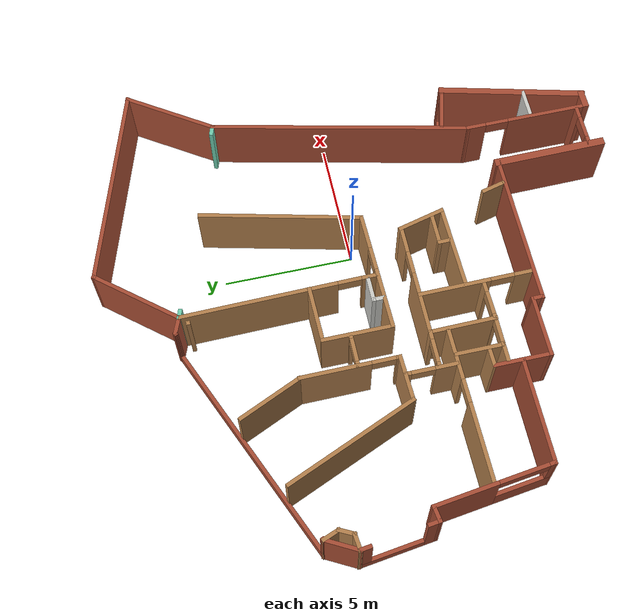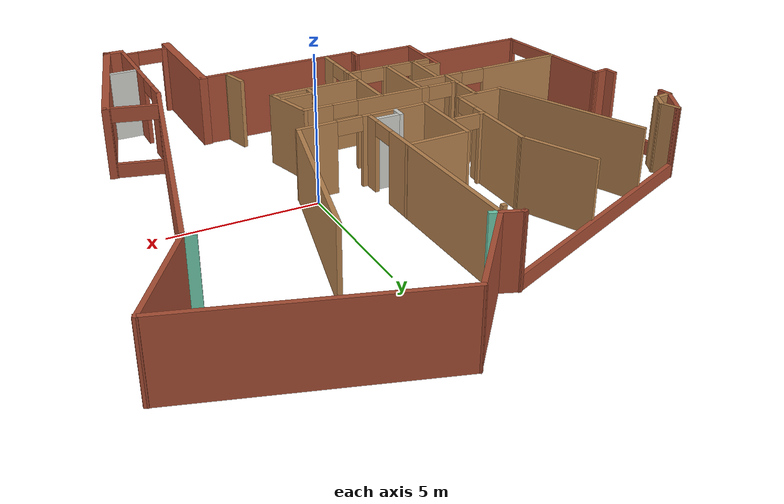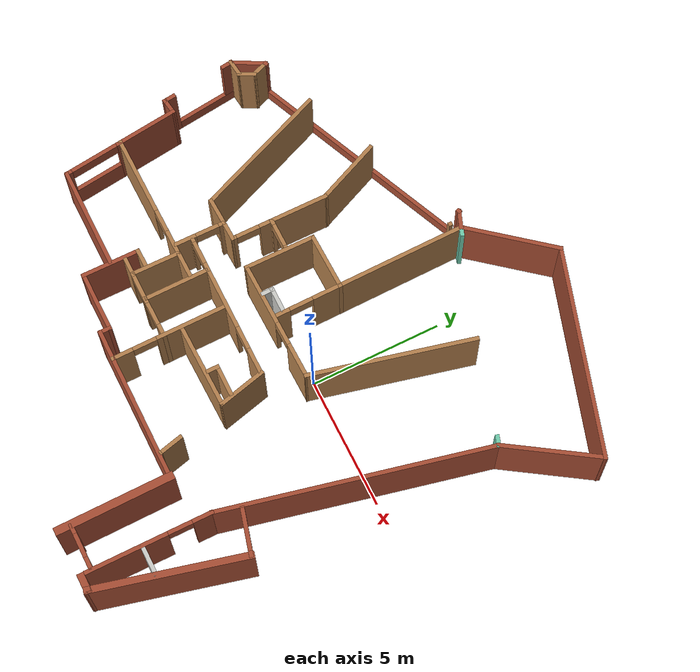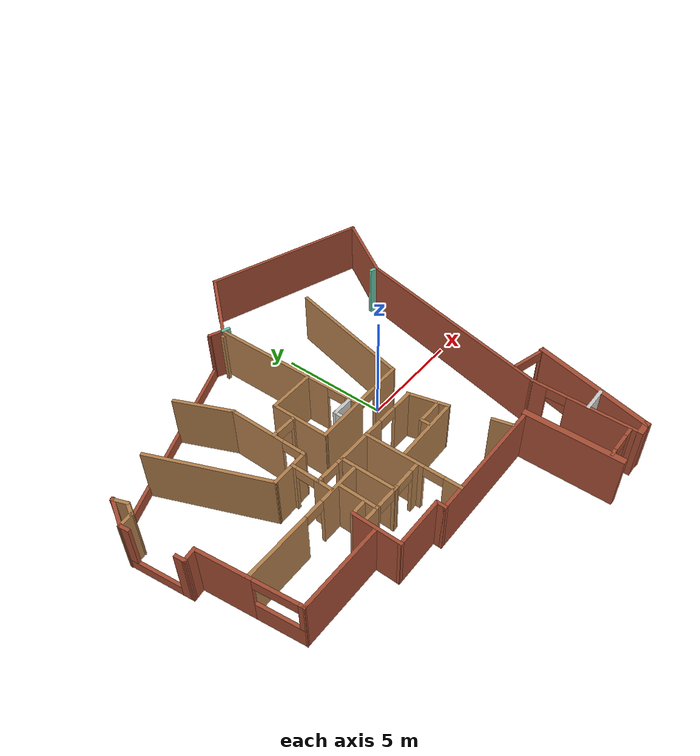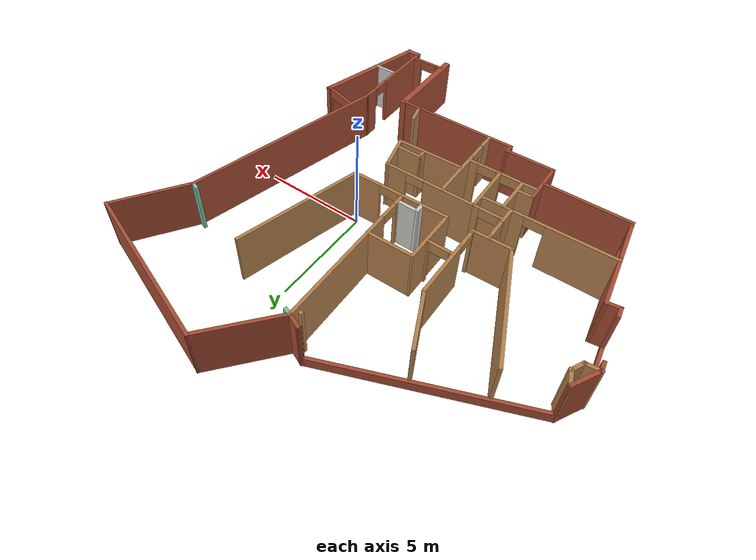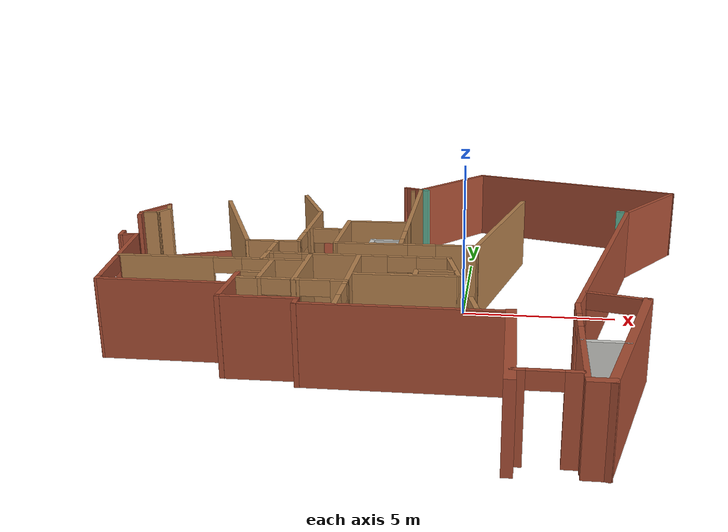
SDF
<sdf version="1.6">
 <model name="Leedon">
  <pose>-2.12155 -0.286424 0 0 -0 0</pose>
  <link name="Wall_10">
   <collision name="Wall_10_Collision">
    <geometry><box><size>4.40644 0.3 2.5</size></box></geometry>
    <pose>0 0 1.25 0 -0 0</pose>
   </collision>
   <visual name="Wall_10_Visual">
    <pose>0 0 1.25 0 -0 0</pose>
    <geometry><box><size>4.40644 0.3 2.5</size></box></geometry>
    <material>
     <script><uri>file://media/materials/scripts/gazebo.material</uri><name>Gazebo/Bricks</name></script>
     <ambient>1 1 1 1</ambient>
    </material>
    <meta><layer>0</layer></meta>
   </visual>
   <pose>3.76655 -7.92646 0 0 -0 1.58054</pose>
  </link>
  <link name="Wall_101">
   <pose>5.51872 -7.43744 0 0 -0 -1.57072</pose>
   <visual name="Wall_101_Visual_0">
    <pose>-1.97999 0 1.25 0 -0 0</pose>
    <geometry><box><size>0.790018 0.15 2.5</size></box></geometry>
    <material>
     <script><uri>file://media/materials/scripts/gazebo.material</uri><name>Gazebo/Bricks</name></script>
     <ambient>1 1 1 1</ambient>
    </material>
    <meta><layer>0</layer></meta>
   </visual>
   <collision name="Wall_101_Collision_0">
    <geometry><box><size>0.790018 0.15 2.5</size></box></geometry>
    <pose>-1.97999 0 1.25 0 -0 0</pose>
   </collision>
   <visual name="Wall_101_Visual_1">
    <pose>0.845009 0 1.25 0 -0 0</pose>
    <geometry><box><size>3.05998 0.15 2.5</size></box></geometry>
    <material>
     <script><uri>file://media/materials/scripts/gazebo.material</uri><name>Gazebo/Bricks</name></script>
     <ambient>1 1 1 1</ambient>
    </material>
    <meta><layer>0</layer></meta>
   </visual>
   <collision name="Wall_101_Collision_1">
    <geometry><box><size>3.05998 0.15 2.5</size></box></geometry>
    <pose>0.845009 0 1.25 0 -0 0</pose>
   </collision>
   <visual name="Wall_101_Visual_2">
    <pose>-1.13498 0 2.25 0 -0 0</pose>
    <geometry><box><size>0.9 0.15 0.5</size></box></geometry>
    <material>
     <script><uri>file://media/materials/scripts/gazebo.material</uri><name>Gazebo/Bricks</name></script>
     <ambient>1 1 1 1</ambient>
    </material>
    <meta><layer>0</layer></meta>
   </visual>
   <collision name="Wall_101_Collision_2">
    <geometry><box><size>0.9 0.15 0.5</size></box></geometry>
    <pose>-1.13498 0 2.25 0 -0 0</pose>
   </collision>
  </link>
  <link name="Wall_103">
   <pose>-5.61845 -2.19508 0 0 -0 0.010769</pose>
   <visual name="Wall_103_Visual_0">
    <pose>-1.43968 0 1.25 0 -0 0</pose>
    <geometry><box><size>3.12174 0.15 2.5</size></box></geometry>
    <material>
     <script><uri>file://media/materials/scripts/gazebo.material</uri><name>Gazebo/Wood</name></script>
     <ambient>1 1 1 1</ambient>
    </material>
    <meta><layer>0</layer></meta>
   </visual>
   <collision name="Wall_103_Collision_0">
    <geometry><box><size>3.12174 0.15 2.5</size></box></geometry>
    <pose>-1.43968 0 1.25 0 -0 0</pose>
   </collision>
   <visual name="Wall_103_Visual_1">
    <pose>2.01087 0 1.25 0 -0 0</pose>
    <geometry><box><size>1.97935 0.15 2.5</size></box></geometry>
    <material>
     <script><uri>file://media/materials/scripts/gazebo.material</uri><name>Gazebo/Wood</name></script>
     <ambient>1 1 1 1</ambient>
    </material>
    <meta><layer>0</layer></meta>
   </visual>
   <collision name="Wall_103_Collision_1">
    <geometry><box><size>1.97935 0.15 2.5</size></box></geometry>
    <pose>2.01087 0 1.25 0 -0 0</pose>
   </collision>
   <visual name="Wall_103_Visual_2">
    <pose>0.571194 0 2.25 0 -0 0</pose>
    <geometry><box><size>0.9 0.15 0.5</size></box></geometry>
    <material>
     <script><uri>file://media/materials/scripts/gazebo.material</uri><name>Gazebo/Wood</name></script>
     <ambient>1 1 1 1</ambient>
    </material>
    <meta><layer>0</layer></meta>
   </visual>
   <collision name="Wall_103_Collision_2">
    <geometry><box><size>0.9 0.15 0.5</size></box></geometry>
    <pose>0.571194 0 2.25 0 -0 0</pose>
   </collision>
  </link>
  <link name="Wall_105">
   <collision name="Wall_105_Collision">
    <geometry><box><size>0.75 0.15 2.5</size></box></geometry>
    <pose>0 0 1.25 0 -0 0</pose>
   </collision>
   <visual name="Wall_105_Visual">
    <pose>0 0 1.25 0 -0 0</pose>
    <geometry><box><size>0.75 0.15 2.5</size></box></geometry>
    <material>
     <script><uri>file://media/materials/scripts/gazebo.material</uri><name>Gazebo/Wood</name></script>
     <ambient>1 1 1 1</ambient>
    </material>
    <meta><layer>0</layer></meta>
   </visual>
   <pose>-3.92614 -3.94824 0 0 -0 3.14159</pose>
  </link>
  <link name="Wall_108">
   <pose>-1.79783 -3.93862 0 0 -0 0.01792</pose>
   <visual name="Wall_108_Visual_0">
    <pose>-0.71544 0 1.25 0 -0 0</pose>
    <geometry><box><size>0.26782 0.15 2.5</size></box></geometry>
    <material>
     <script><uri>file://media/materials/scripts/gazebo.material</uri><name>Gazebo/Wood</name></script>
     <ambient>1 1 1 1</ambient>
    </material>
    <meta><layer>0</layer></meta>
   </visual>
   <collision name="Wall_108_Collision_0">
    <geometry><box><size>0.26782 0.15 2.5</size></box></geometry>
    <pose>-0.71544 0 1.25 0 -0 0</pose>
   </collision>
   <visual name="Wall_108_Visual_1">
    <pose>0.58391 0 1.25 0 -0 0</pose>
    <geometry><box><size>0.53088 0.15 2.5</size></box></geometry>
    <material>
     <script><uri>file://media/materials/scripts/gazebo.material</uri><name>Gazebo/Wood</name></script>
     <ambient>1 1 1 1</ambient>
    </material>
    <meta><layer>0</layer></meta>
   </visual>
   <collision name="Wall_108_Collision_1">
    <geometry><box><size>0.53088 0.15 2.5</size></box></geometry>
    <pose>0.58391 0 1.25 0 -0 0</pose>
   </collision>
   <visual name="Wall_108_Visual_2">
    <pose>-0.13153 0 2.25 0 -0 0</pose>
    <geometry><box><size>0.9 0.15 0.5</size></box></geometry>
    <material>
     <script><uri>file://media/materials/scripts/gazebo.material</uri><name>Gazebo/Wood</name></script>
     <ambient>1 1 1 1</ambient>
    </material>
    <meta><layer>0</layer></meta>
   </visual>
   <collision name="Wall_108_Collision_2">
    <geometry><box><size>0.9 0.15 0.5</size></box></geometry>
    <pose>-0.13153 0 2.25 0 -0 0</pose>
   </collision>
  </link>
  <link name="Wall_110">
   <pose>-1.02896 -3.68809 0 0 -0 -1.56252</pose>
   <visual name="Wall_110_Visual_0">
    <pose>-0.863691 0 1.25 0 -0 0</pose>
    <geometry><box><size>2.77277 0.15 2.5</size></box></geometry>
    <material>
     <script><uri>file://media/materials/scripts/gazebo.material</uri><name>Gazebo/Wood</name></script>
     <ambient>1 1 1 1</ambient>
    </material>
    <meta><layer>0</layer></meta>
   </visual>
   <collision name="Wall_110_Collision_0">
    <geometry><box><size>2.77277 0.15 2.5</size></box></geometry>
    <pose>-0.863691 0 1.25 0 -0 0</pose>
   </collision>
   <visual name="Wall_110_Visual_1">
    <pose>1.83638 0 1.25 0 -0 0</pose>
    <geometry><box><size>0.827382 0.15 2.5</size></box></geometry>
    <material>
     <script><uri>file://media/materials/scripts/gazebo.material</uri><name>Gazebo/Wood</name></script>
     <ambient>1 1 1 1</ambient>
    </material>
    <meta><layer>0</layer></meta>
   </visual>
   <collision name="Wall_110_Collision_1">
    <geometry><box><size>0.827382 0.15 2.5</size></box></geometry>
    <pose>1.83638 0 1.25 0 -0 0</pose>
   </collision>
   <visual name="Wall_110_Visual_2">
    <pose>0.972693 0 2.25 0 -0 0</pose>
    <geometry><box><size>0.9 0.15 0.5</size></box></geometry>
    <material>
     <script><uri>file://media/materials/scripts/gazebo.material</uri><name>Gazebo/Wood</name></script>
     <ambient>1 1 1 1</ambient>
    </material>
    <meta><layer>0</layer></meta>
   </visual>
   <collision name="Wall_110_Collision_2">
    <geometry><box><size>0.9 0.15 0.5</size></box></geometry>
    <pose>0.972693 0 2.25 0 -0 0</pose>
   </collision>
  </link>
  <link name="Wall_113">
   <pose>-0.416989 -1.50816 0 0 -0 -0.000656</pose>
   <visual name="Wall_113_Visual_0">
    <pose>-0.986339 0 1.25 0 -0 0</pose>
    <geometry><box><size>2.50599 0.15 2.5</size></box></geometry>
    <material>
     <script><uri>file://media/materials/scripts/gazebo.material</uri><name>Gazebo/Wood</name></script>
     <ambient>1 1 1 1</ambient>
    </material>
    <meta><layer>0</layer></meta>
   </visual>
   <collision name="Wall_113_Collision_0">
    <geometry><box><size>2.50599 0.15 2.5</size></box></geometry>
    <pose>-0.986339 0 1.25 0 -0 0</pose>
   </collision>
   <visual name="Wall_113_Visual_1">
    <pose>1.703 0 1.25 0 -0 0</pose>
    <geometry><box><size>1.07268 0.15 2.5</size></box></geometry>
    <material>
     <script><uri>file://media/materials/scripts/gazebo.material</uri><name>Gazebo/Wood</name></script>
     <ambient>1 1 1 1</ambient>
    </material>
    <meta><layer>0</layer></meta>
   </visual>
   <collision name="Wall_113_Collision_1">
    <geometry><box><size>1.07268 0.15 2.5</size></box></geometry>
    <pose>1.703 0 1.25 0 -0 0</pose>
   </collision>
   <visual name="Wall_113_Visual_2">
    <pose>0.716658 0 2.25 0 -0 0</pose>
    <geometry><box><size>0.9 0.15 0.5</size></box></geometry>
    <material>
     <script><uri>file://media/materials/scripts/gazebo.material</uri><name>Gazebo/Wood</name></script>
     <ambient>1 1 1 1</ambient>
    </material>
    <meta><layer>0</layer></meta>
   </visual>
   <collision name="Wall_113_Collision_2">
    <geometry><box><size>0.9 0.15 0.5</size></box></geometry>
    <pose>0.716658 0 2.25 0 -0 0</pose>
   </collision>
  </link>
  <link name="Wall_114">
   <pose>2.29634 -3.62928 0 0 -0 -1.32455</pose>
   <visual name="Wall_114_Visual_0">
    <pose>-1.33328 0 1.25 0 -0 0</pose>
    <geometry><box><size>1.89923 0.15 2.5</size></box></geometry>
    <material>
     <script><uri>file://media/materials/scripts/gazebo.material</uri><name>Gazebo/Wood</name></script>
     <ambient>1 1 1 1</ambient>
    </material>
    <meta><layer>0</layer></meta>
   </visual>
   <collision name="Wall_114_Collision_0">
    <geometry><box><size>1.89923 0.15 2.5</size></box></geometry>
    <pose>-1.33328 0 1.25 0 -0 0</pose>
   </collision>
   <visual name="Wall_114_Visual_1">
    <pose>2.24411 0 1.25 0 -0 0</pose>
    <geometry><box><size>0.07756 0.15 2.5</size></box></geometry>
    <material>
     <script><uri>file://media/materials/scripts/gazebo.material</uri><name>Gazebo/Wood</name></script>
     <ambient>1 1 1 1</ambient>
    </material>
    <meta><layer>0</layer></meta>
   </visual>
   <collision name="Wall_114_Collision_1">
    <geometry><box><size>0.07756 0.15 2.5</size></box></geometry>
    <pose>2.24411 0 1.25 0 -0 0</pose>
   </collision>
   <visual name="Wall_114_Visual_2">
    <pose>1.75967 0 1.25 0 -0 0</pose>
    <geometry><box><size>0.891326 0.15 2.5</size></box></geometry>
    <material>
     <script><uri>file://media/materials/scripts/gazebo.material</uri><name>Gazebo/Wood</name></script>
     <ambient>1 1 1 1</ambient>
    </material>
    <meta><layer>0</layer></meta>
   </visual>
   <collision name="Wall_114_Collision_2">
    <geometry><box><size>0.891326 0.15 2.5</size></box></geometry>
    <pose>1.75967 0 1.25 0 -0 0</pose>
   </collision>
  </link>
  <link name="Wall_116">
   <pose>-3.28531 1.62386 0 0 -0 -1.56733</pose>
   <visual name="Wall_116_Visual_0">
    <pose>-0.558774 0 1.25 0 -0 0</pose>
    <geometry><box><size>2.7069 0.15 2.5</size></box></geometry>
    <material>
     <script><uri>file://media/materials/scripts/gazebo.material</uri><name>Gazebo/Wood</name></script>
     <ambient>1 1 1 1</ambient>
    </material>
    <meta><layer>0</layer></meta>
   </visual>
   <collision name="Wall_116_Collision_0">
    <geometry><box><size>2.7069 0.15 2.5</size></box></geometry>
    <pose>-0.558774 0 1.25 0 -0 0</pose>
   </collision>
   <visual name="Wall_116_Visual_1">
    <pose>1.80345 0 1.25 0 -0 0</pose>
    <geometry><box><size>0.217549 0.15 2.5</size></box></geometry>
    <material>
     <script><uri>file://media/materials/scripts/gazebo.material</uri><name>Gazebo/Wood</name></script>
     <ambient>1 1 1 1</ambient>
    </material>
    <meta><layer>0</layer></meta>
   </visual>
   <collision name="Wall_116_Collision_1">
    <geometry><box><size>0.217549 0.15 2.5</size></box></geometry>
    <pose>1.80345 0 1.25 0 -0 0</pose>
   </collision>
   <visual name="Wall_116_Visual_2">
    <pose>1.24467 0 2.25 0 -0 0</pose>
    <geometry><box><size>0.9 0.15 0.5</size></box></geometry>
    <material>
     <script><uri>file://media/materials/scripts/gazebo.material</uri><name>Gazebo/Wood</name></script>
     <ambient>1 1 1 1</ambient>
    </material>
    <meta><layer>0</layer></meta>
   </visual>
   <collision name="Wall_116_Collision_2">
    <geometry><box><size>0.9 0.15 0.5</size></box></geometry>
    <pose>1.24467 0 2.25 0 -0 0</pose>
   </collision>
  </link>
  <link name="Wall_118">
   <pose>-2.71499 1.32662 0 0 -0 0</pose>
   <visual name="Wall_118_Visual_0">
    <pose>-0.507823 0 1.25 0 -0 0</pose>
    <geometry><box><size>0.234354 0.15 2.5</size></box></geometry>
    <material>
     <script><uri>file://media/materials/scripts/gazebo.material</uri><name>Gazebo/Wood</name></script>
     <ambient>1 1 1 1</ambient>
    </material>
    <meta><layer>0</layer></meta>
   </visual>
   <collision name="Wall_118_Collision_0">
    <geometry><box><size>0.234354 0.15 2.5</size></box></geometry>
    <pose>-0.507823 0 1.25 0 -0 0</pose>
   </collision>
   <visual name="Wall_118_Visual_1">
    <pose>0.567177 0 1.25 0 -0 0</pose>
    <geometry><box><size>0.115646 0.15 2.5</size></box></geometry>
    <material>
     <script><uri>file://media/materials/scripts/gazebo.material</uri><name>Gazebo/Wood</name></script>
     <ambient>1 1 1 1</ambient>
    </material>
    <meta><layer>0</layer></meta>
   </visual>
   <collision name="Wall_118_Collision_1">
    <geometry><box><size>0.115646 0.15 2.5</size></box></geometry>
    <pose>0.567177 0 1.25 0 -0 0</pose>
   </collision>
   <visual name="Wall_118_Visual_2">
    <pose>0.059354 0 2.25 0 -0 0</pose>
    <geometry><box><size>0.9 0.15 0.5</size></box></geometry>
    <material>
     <script><uri>file://media/materials/scripts/gazebo.material</uri><name>Gazebo/Wood</name></script>
     <ambient>1 1 1 1</ambient>
    </material>
    <meta><layer>0</layer></meta>
   </visual>
   <collision name="Wall_118_Collision_2">
    <geometry><box><size>0.9 0.15 0.5</size></box></geometry>
    <pose>0.059354 0 2.25 0 -0 0</pose>
   </collision>
  </link>
  <link name="Wall_12">
   <collision name="Wall_12_Collision">
    <geometry><box><size>5.77973 0.25 2.5</size></box></geometry>
    <pose>0 0 1.25 0 -0 0</pose>
   </collision>
   <visual name="Wall_12_Visual">
    <pose>0 0 1.25 0 -0 0</pose>
    <geometry><box><size>5.77973 0.25 2.5</size></box></geometry>
    <material>
     <script><uri>file://media/materials/scripts/gazebo.material</uri><name>Gazebo/Bricks</name></script>
     <ambient>1 1 1 1</ambient>
    </material>
    <meta><layer>0</layer></meta>
   </visual>
   <pose>6.76221 -7.26643 0 0 -0 1.32218</pose>
  </link>
  <link name="Wall_120">
   <pose>-3.97205 -1.19522 0 0 -0 1.5708</pose>
   <visual name="Wall_120_Visual_0">
    <pose>-0.568925 0 1.25 0 -0 0</pose>
    <geometry><box><size>0.86215 0.15 2.5</size></box></geometry>
    <material>
     <script><uri>file://media/materials/scripts/gazebo.material</uri><name>Gazebo/Wood</name></script>
     <ambient>1 1 1 1</ambient>
    </material>
    <meta><layer>0</layer></meta>
   </visual>
   <collision name="Wall_120_Collision_0">
    <geometry><box><size>0.86215 0.15 2.5</size></box></geometry>
    <pose>-0.568925 0 1.25 0 -0 0</pose>
   </collision>
   <visual name="Wall_120_Visual_1">
    <pose>0.875126 0 1.25 0 -0 0</pose>
    <geometry><box><size>0.249748 0.15 2.5</size></box></geometry>
    <material>
     <script><uri>file://media/materials/scripts/gazebo.material</uri><name>Gazebo/Wood</name></script>
     <ambient>1 1 1 1</ambient>
    </material>
    <meta><layer>0</layer></meta>
   </visual>
   <collision name="Wall_120_Collision_1">
    <geometry><box><size>0.249748 0.15 2.5</size></box></geometry>
    <pose>0.875126 0 1.25 0 -0 0</pose>
   </collision>
   <visual name="Wall_120_Visual_2">
    <pose>0.306201 0 2.25 0 -0 0</pose>
    <geometry><box><size>0.888102 0.15 0.5</size></box></geometry>
    <material>
     <script><uri>file://media/materials/scripts/gazebo.material</uri><name>Gazebo/Wood</name></script>
     <ambient>1 1 1 1</ambient>
    </material>
    <meta><layer>0</layer></meta>
   </visual>
   <collision name="Wall_120_Collision_2">
    <geometry><box><size>0.888102 0.15 0.5</size></box></geometry>
    <pose>0.306201 0 2.25 0 -0 0</pose>
   </collision>
  </link>
  <link name="Wall_124">
   <pose>-4.87645 5.67992 0 0 -0 -2.74324</pose>
   <visual name="Wall_124_Visual_0">
    <pose>-4.61267 0 1.25 0 -0 0</pose>
    <geometry><box><size>0.177135 0.15 2.5</size></box></geometry>
    <material>
     <script><uri>file://media/materials/scripts/gazebo.material</uri><name>Gazebo/Bricks</name></script>
     <ambient>1 1 1 1</ambient>
    </material>
    <meta><layer>0</layer></meta>
   </visual>
   <collision name="Wall_124_Collision_0">
    <geometry><box><size>0.177135 0.15 2.5</size></box></geometry>
    <pose>-4.61267 0 1.25 0 -0 0</pose>
   </collision>
   <visual name="Wall_124_Visual_1">
    <pose>0.088567 0 0.25 0 -0 0</pose>
    <geometry><box><size>9.22535 0.15 0.5</size></box></geometry>
    <material>
     <script><uri>file://media/materials/scripts/gazebo.material</uri><name>Gazebo/Bricks</name></script>
     <ambient>1 1 1 1</ambient>
    </material>
    <meta><layer>0</layer></meta>
   </visual>
   <collision name="Wall_124_Collision_1">
    <geometry><box><size>9.22535 0.15 0.5</size></box></geometry>
    <pose>0.088567 0 0.25 0 -0 0</pose>
   </collision>
   <visual name="Wall_124_Visual_2">
    <pose>4.61257 0 1.5 0 -0 0</pose>
    <geometry><box><size>0.177346 0.15 2</size></box></geometry>
    <material>
     <script><uri>file://media/materials/scripts/gazebo.material</uri><name>Gazebo/Bricks</name></script>
     <ambient>1 1 1 1</ambient>
    </material>
    <meta><layer>0</layer></meta>
   </visual>
   <collision name="Wall_124_Collision_2">
    <geometry><box><size>0.177346 0.15 2</size></box></geometry>
    <pose>4.61257 0 1.5 0 -0 0</pose>
   </collision>
  </link>
  <link name="Wall_126">
   <pose>-9.56364 1.34092 0 0 -0 1.70191</pose>
   <visual name="Wall_126_Visual_0">
    <pose>-1.24658 0 1.25 0 -0 0</pose>
    <geometry><box><size>0.52041 0.15 2.5</size></box></geometry>
    <material>
     <script><uri>file://media/materials/scripts/gazebo.material</uri><name>Gazebo/Bricks</name></script>
     <ambient>1 1 1 1</ambient>
    </material>
    <meta><layer>0</layer></meta>
   </visual>
   <collision name="Wall_126_Collision_0">
    <geometry><box><size>0.52041 0.15 2.5</size></box></geometry>
    <pose>-1.24658 0 1.25 0 -0 0</pose>
   </collision>
   <visual name="Wall_126_Visual_1">
    <pose>0.260205 0 0.25 0 -0 0</pose>
    <geometry><box><size>2.49317 0.15 0.5</size></box></geometry>
    <material>
     <script><uri>file://media/materials/scripts/gazebo.material</uri><name>Gazebo/Bricks</name></script>
     <ambient>1 1 1 1</ambient>
    </material>
    <meta><layer>0</layer></meta>
   </visual>
   <collision name="Wall_126_Collision_1">
    <geometry><box><size>2.49317 0.15 0.5</size></box></geometry>
    <pose>0.260205 0 0.25 0 -0 0</pose>
   </collision>
   <visual name="Wall_126_Visual_2">
    <pose>1.26021 0 1.5 0 -0 0</pose>
    <geometry><box><size>0.493169 0.15 2</size></box></geometry>
    <material>
     <script><uri>file://media/materials/scripts/gazebo.material</uri><name>Gazebo/Bricks</name></script>
     <ambient>1 1 1 1</ambient>
    </material>
    <meta><layer>0</layer></meta>
   </visual>
   <collision name="Wall_126_Collision_2">
    <geometry><box><size>0.493169 0.15 2</size></box></geometry>
    <pose>1.26021 0 1.5 0 -0 0</pose>
   </collision>
  </link>
  <link name="Wall_128">
   <collision name="Wall_128_Collision">
    <geometry><box><size>1.42992 0.15 2.5</size></box></geometry>
    <pose>0 0 1.25 0 -0 0</pose>
   </collision>
   <visual name="Wall_128_Visual">
    <pose>0 0 1.25 0 -0 0</pose>
    <geometry><box><size>1.42992 0.15 2.5</size></box></geometry>
    <material>
     <script><uri>file://media/materials/scripts/gazebo.material</uri><name>Gazebo/Bricks</name></script>
     <ambient>1 1 1 1</ambient>
    </material>
    <meta><layer>0</layer></meta>
   </visual>
   <pose>-9.44564 3.32292 0 0 -0 1.07368</pose>
  </link>
  <link name="Wall_130">
   <collision name="Wall_130_Collision">
    <geometry><box><size>0.75 0.15 2.5</size></box></geometry>
    <pose>0 0 1.25 0 -0 0</pose>
   </collision>
   <visual name="Wall_130_Visual">
    <pose>0 0 1.25 0 -0 0</pose>
    <geometry><box><size>0.75 0.15 2.5</size></box></geometry>
    <material>
     <script><uri>file://media/materials/scripts/gazebo.material</uri><name>Gazebo/Wood</name></script>
     <ambient>1 1 1 1</ambient>
    </material>
    <meta><layer>0</layer></meta>
   </visual>
   <pose>-9.03295 3.60542 0 0 -0 -1.20422</pose>
  </link>
  <link name="Wall_131">
   <collision name="Wall_131_Collision">
    <geometry><box><size>0.702015 0.15 2.5</size></box></geometry>
    <pose>0 0 1.25 0 -0 0</pose>
   </collision>
   <visual name="Wall_131_Visual">
    <pose>0 0 1.25 0 -0 0</pose>
    <geometry><box><size>0.702015 0.15 2.5</size></box></geometry>
    <material>
     <script><uri>file://media/materials/scripts/gazebo.material</uri><name>Gazebo/Wood</name></script>
     <ambient>1 1 1 1</ambient>
    </material>
    <meta><layer>0</layer></meta>
   </visual>
   <pose>-9.05028 3.07897 0 0 -0 -2.03965</pose>
  </link>
  <link name="Wall_132">
   <collision name="Wall_132_Collision">
    <geometry><box><size>0.730211 0.15 2.5</size></box></geometry>
    <pose>0 0 1.25 0 -0 0</pose>
   </collision>
   <visual name="Wall_132_Visual">
    <pose>0 0 1.25 0 -0 0</pose>
    <geometry><box><size>0.730211 0.15 2.5</size></box></geometry>
    <material>
     <script><uri>file://media/materials/scripts/gazebo.material</uri><name>Gazebo/Wood</name></script>
     <ambient>1 1 1 1</ambient>
    </material>
    <meta><layer>0</layer></meta>
   </visual>
   <pose>-9.47007 2.80002 0 0 -0 -3.02916</pose>
  </link>
  <link name="Wall_134">
   <pose>-8.55193 -2.23582 0 0 -0 -1.43936</pose>
   <visual name="Wall_134_Visual_0">
    <pose>-1.0795 0 1.25 0 -0 0</pose>
    <geometry><box><size>2.50082 0.15 2.5</size></box></geometry>
    <material>
     <script><uri>file://media/materials/scripts/gazebo.material</uri><name>Gazebo/Bricks</name></script>
     <ambient>1 1 1 1</ambient>
    </material>
    <meta><layer>0</layer></meta>
   </visual>
   <collision name="Wall_134_Collision_0">
    <geometry><box><size>2.50082 0.15 2.5</size></box></geometry>
    <pose>-1.0795 0 1.25 0 -0 0</pose>
   </collision>
   <visual name="Wall_134_Visual_1">
    <pose>1.25041 0 0.5 0 -0 0</pose>
    <geometry><box><size>2.15901 0.15 1</size></box></geometry>
    <material>
     <script><uri>file://media/materials/scripts/gazebo.material</uri><name>Gazebo/Bricks</name></script>
     <ambient>1 1 1 1</ambient>
    </material>
    <meta><layer>0</layer></meta>
   </visual>
   <collision name="Wall_134_Collision_1">
    <geometry><box><size>2.15901 0.15 1</size></box></geometry>
    <pose>1.25041 0 0.5 0 -0 0</pose>
   </collision>
   <visual name="Wall_134_Visual_2">
    <pose>2.18991 0 1.75 0 -0 0</pose>
    <geometry><box><size>0.280007 0.15 1.5</size></box></geometry>
    <material>
     <script><uri>file://media/materials/scripts/gazebo.material</uri><name>Gazebo/Bricks</name></script>
     <ambient>1 1 1 1</ambient>
    </material>
    <meta><layer>0</layer></meta>
   </visual>
   <collision name="Wall_134_Collision_2">
    <geometry><box><size>0.280007 0.15 1.5</size></box></geometry>
    <pose>2.18991 0 1.75 0 -0 0</pose>
   </collision>
   <visual name="Wall_134_Visual_3">
    <pose>1.11041 0 2.25 0 -0 0</pose>
    <geometry><box><size>1.879 0.15 0.5</size></box></geometry>
    <material>
     <script><uri>file://media/materials/scripts/gazebo.material</uri><name>Gazebo/Bricks</name></script>
     <ambient>1 1 1 1</ambient>
    </material>
    <meta><layer>0</layer></meta>
   </visual>
   <collision name="Wall_134_Collision_3">
    <geometry><box><size>1.879 0.15 0.5</size></box></geometry>
    <pose>1.11041 0 2.25 0 -0 0</pose>
   </collision>
  </link>
  <link name="Wall_136">
   <pose>-3.26789 -1.50365 0 0 -0 3.1371</pose>
   <visual name="Wall_136_Visual_0">
    <pose>-0.581762 0 1.25 0 -0 0</pose>
    <geometry><box><size>0.359732 0.15 2.5</size></box></geometry>
    <material>
     <script><uri>file://media/materials/scripts/gazebo.material</uri><name>Gazebo/Wood</name></script>
     <ambient>1 1 1 1</ambient>
    </material>
    <meta><layer>0</layer></meta>
   </visual>
   <collision name="Wall_136_Collision_0">
    <geometry><box><size>0.359732 0.15 2.5</size></box></geometry>
    <pose>-0.581762 0 1.25 0 -0 0</pose>
   </collision>
   <visual name="Wall_136_Visual_1">
    <pose>0.629866 0 1.25 0 -0 0</pose>
    <geometry><box><size>0.263523 0.15 2.5</size></box></geometry>
    <material>
     <script><uri>file://media/materials/scripts/gazebo.material</uri><name>Gazebo/Wood</name></script>
     <ambient>1 1 1 1</ambient>
    </material>
    <meta><layer>0</layer></meta>
   </visual>
   <collision name="Wall_136_Collision_1">
    <geometry><box><size>0.263523 0.15 2.5</size></box></geometry>
    <pose>0.629866 0 1.25 0 -0 0</pose>
   </collision>
   <visual name="Wall_136_Visual_2">
    <pose>0.048104 0 2.25 0 -0 0</pose>
    <geometry><box><size>0.9 0.15 0.5</size></box></geometry>
    <material>
     <script><uri>file://media/materials/scripts/gazebo.material</uri><name>Gazebo/Wood</name></script>
     <ambient>1 1 1 1</ambient>
    </material>
    <meta><layer>0</layer></meta>
   </visual>
   <collision name="Wall_136_Collision_2">
    <geometry><box><size>0.9 0.15 0.5</size></box></geometry>
    <pose>0.048104 0 2.25 0 -0 0</pose>
   </collision>
  </link>
  <link name="Wall_138">
   <collision name="Wall_138_Collision">
    <geometry><box><size>8.00452 0.15 2.5</size></box></geometry>
    <pose>0 0 1.25 0 -0 0</pose>
   </collision>
   <visual name="Wall_138_Visual">
    <pose>0 0 1.25 0 -0 0</pose>
    <geometry><box><size>8.00452 0.15 2.5</size></box></geometry>
    <material>
     <script><uri>file://media/materials/scripts/gazebo.material</uri><name>Gazebo/Bricks</name></script>
     <ambient>1 1 1 1</ambient>
    </material>
    <meta><layer>0</layer></meta>
   </visual>
   <pose>6.01851 8.8252 0 0 -0 -0.310582</pose>
  </link>
  <link name="Wall_14">
   <collision name="Wall_14_Collision">
    <geometry><box><size>0.750001 0.25 2.5</size></box></geometry>
    <pose>0 0 1.25 0 -0 0</pose>
   </collision>
   <visual name="Wall_14_Visual">
    <pose>0 0 1.25 0 -0 0</pose>
    <geometry><box><size>0.750001 0.25 2.5</size></box></geometry>
    <material>
     <script><uri>file://media/materials/scripts/gazebo.material</uri><name>Gazebo/Bricks</name></script>
     <ambient>1 1 1 1</ambient>
    </material>
    <meta><layer>0</layer></meta>
   </visual>
   <pose>5.83187 -9.93098 0 0 -0 -3.13959</pose>
  </link>
  <link name="Wall_141">
   <collision name="Wall_141_Collision">
    <geometry><box><size>0.15 0.15 2.5</size></box></geometry>
    <pose>0 0 1.25 0 -0 0</pose>
   </collision>
   <visual name="Wall_141_Visual">
    <pose>0 0 1.25 0 -0 0</pose>
    <geometry><box><size>0.15 0.15 2.5</size></box></geometry>
    <material>
     <script><uri>file://media/materials/scripts/gazebo.material</uri><name>Gazebo/Wood</name></script>
     <ambient>1 1 1 1</ambient>
    </material>
    <meta><layer>0</layer></meta>
   </visual>
   <pose>-0.31245 6.95442 0 0 -0 0</pose>
  </link>
  <link name="Wall_145">
   <collision name="Wall_145_Collision">
    <geometry><box><size>3.76449 0.15 2.5</size></box></geometry>
    <pose>0 0 1.25 0 -0 0</pose>
   </collision>
   <visual name="Wall_145_Visual">
    <pose>0 0 1.25 0 -0 0</pose>
    <geometry><box><size>3.76449 0.15 2.5</size></box></geometry>
    <material>
     <script><uri>file://media/materials/scripts/gazebo.material</uri><name>Gazebo/Bricks</name></script>
     <ambient>1 1 1 1</ambient>
    </material>
    <meta><layer>0</layer></meta>
   </visual>
   <pose>1.12535 8.63442 0 0 -0 -2.26325</pose>
  </link>
  <link name="Wall_147">
   <collision name="Wall_147_Collision">
    <geometry><box><size>0.778026 0.15 2.5</size></box></geometry>
    <pose>0 0 1.25 0 -0 0</pose>
   </collision>
   <visual name="Wall_147_Visual">
    <pose>0 0 1.25 0 -0 0</pose>
    <geometry><box><size>0.778026 0.15 2.5</size></box></geometry>
    <material>
     <script><uri>file://media/materials/scripts/gazebo.material</uri><name>Gazebo/Bricks</name></script>
     <ambient>1 1 1 1</ambient>
    </material>
    <meta><layer>0</layer></meta>
   </visual>
   <pose>-0.32045 7.35892 0 0 -0 -0.376663</pose>
  </link>
  <link name="Wall_149">
   <collision name="Wall_149_Collision">
    <geometry><box><size>3.77896 0.15 2.5</size></box></geometry>
    <pose>0 0 1.25 0 -0 0</pose>
   </collision>
   <visual name="Wall_149_Visual">
    <pose>0 0 1.25 0 -0 0</pose>
    <geometry><box><size>3.77896 0.15 2.5</size></box></geometry>
    <material>
     <script><uri>file://media/materials/scripts/gazebo.material</uri><name>Gazebo/Bricks</name></script>
     <ambient>1 1 1 1</ambient>
    </material>
    <meta><layer>0</layer></meta>
   </visual>
   <pose>8.75057 6.1097 0 0 -0 -2.15322</pose>
  </link>
  <link name="Wall_151">
   <pose>3.86205 5.91892 0 0 -0 -0.328137</pose>
   <visual name="Wall_151_Visual_0">
    <pose>-3.97626 0 1.25 0 -0 0</pose>
    <geometry><box><size>0.417611 0.15 2.5</size></box></geometry>
    <material>
     <script><uri>file://media/materials/scripts/gazebo.material</uri><name>Gazebo/Grey</name></script>
     <ambient>0.435294 0.796078 0.67451 1</ambient>
    </material>
    <meta><layer>0</layer></meta>
   </visual>
   <collision name="Wall_151_Collision_0">
    <geometry><box><size>0.417611 0.15 2.5</size></box></geometry>
    <pose>-3.97626 0 1.25 0 -0 0</pose>
   </collision>
   <visual name="Wall_151_Visual_1">
    <pose>3.9573 0 1.25 0 -0 0</pose>
    <geometry><box><size>0.455513 0.15 2.5</size></box></geometry>
    <material>
     <script><uri>file://media/materials/scripts/gazebo.material</uri><name>Gazebo/Grey</name></script>
     <ambient>0.435294 0.796078 0.67451 1</ambient>
    </material>
    <meta><layer>0</layer></meta>
   </visual>
   <collision name="Wall_151_Collision_1">
    <geometry><box><size>0.455513 0.15 2.5</size></box></geometry>
    <pose>3.9573 0 1.25 0 -0 0</pose>
   </collision>
  </link>
  <link name="Wall_153">
   <pose>6.64555 -4.37308 0 0 -0 2.87986</pose>
   <visual name="Wall_153_Visual_0">
    <pose>-0.783224 0 1.25 0 -0 0</pose>
    <geometry><box><size>0.233552 0.15 2.5</size></box></geometry>
    <material>
     <script><uri>file://media/materials/scripts/gazebo.material</uri><name>Gazebo/Bricks</name></script>
     <ambient>1 1 1 1</ambient>
    </material>
    <meta><layer>0</layer></meta>
   </visual>
   <collision name="Wall_153_Collision_0">
    <geometry><box><size>0.233552 0.15 2.5</size></box></geometry>
    <pose>-0.783224 0 1.25 0 -0 0</pose>
   </collision>
   <visual name="Wall_153_Visual_1">
    <pose>0.116776 0 0.25 0 -0 0</pose>
    <geometry><box><size>1.56645 0.15 0.5</size></box></geometry>
    <material>
     <script><uri>file://media/materials/scripts/gazebo.material</uri><name>Gazebo/Bricks</name></script>
     <ambient>1 1 1 1</ambient>
    </material>
    <meta><layer>0</layer></meta>
   </visual>
   <collision name="Wall_153_Collision_1">
    <geometry><box><size>1.56645 0.15 0.5</size></box></geometry>
    <pose>0.116776 0 0.25 0 -0 0</pose>
   </collision>
   <visual name="Wall_153_Visual_2">
    <pose>0.874776 0 1.5 0 -0 0</pose>
    <geometry><box><size>0.050448 0.15 2</size></box></geometry>
    <material>
     <script><uri>file://media/materials/scripts/gazebo.material</uri><name>Gazebo/Bricks</name></script>
     <ambient>1 1 1 1</ambient>
    </material>
    <meta><layer>0</layer></meta>
   </visual>
   <collision name="Wall_153_Collision_2">
    <geometry><box><size>0.050448 0.15 2</size></box></geometry>
    <pose>0.874776 0 1.5 0 -0 0</pose>
   </collision>
   <visual name="Wall_153_Visual_3">
    <pose>0.091552 0 2.25 0 -0 0</pose>
    <geometry><box><size>1.516 0.15 0.5</size></box></geometry>
    <material>
     <script><uri>file://media/materials/scripts/gazebo.material</uri><name>Gazebo/Bricks</name></script>
     <ambient>1 1 1 1</ambient>
    </material>
    <meta><layer>0</layer></meta>
   </visual>
   <collision name="Wall_153_Collision_3">
    <geometry><box><size>1.516 0.15 0.5</size></box></geometry>
    <pose>0.091552 0 2.25 0 -0 0</pose>
   </collision>
  </link>
  <link name="Wall_155">
   <pose>4.61786 -9.53985 0 0 -0 0</pose>
   <visual name="Wall_155_Visual_0">
    <pose>-0.68235 0 1.25 0 -0 0</pose>
    <geometry><box><size>0.385299 0.15 2.5</size></box></geometry>
    <material>
     <script><uri>file://media/materials/scripts/gazebo.material</uri><name>Gazebo/Bricks</name></script>
     <ambient>1 1 1 1</ambient>
    </material>
    <meta><layer>0</layer></meta>
   </visual>
   <collision name="Wall_155_Collision_0">
    <geometry><box><size>0.385299 0.15 2.5</size></box></geometry>
    <pose>-0.68235 0 1.25 0 -0 0</pose>
   </collision>
   <visual name="Wall_155_Visual_1">
    <pose>0.64265 0 1.25 0 -0 0</pose>
    <geometry><box><size>0.464701 0.15 2.5</size></box></geometry>
    <material>
     <script><uri>file://media/materials/scripts/gazebo.material</uri><name>Gazebo/Bricks</name></script>
     <ambient>1 1 1 1</ambient>
    </material>
    <meta><layer>0</layer></meta>
   </visual>
   <collision name="Wall_155_Collision_1">
    <geometry><box><size>0.464701 0.15 2.5</size></box></geometry>
    <pose>0.64265 0 1.25 0 -0 0</pose>
   </collision>
   <visual name="Wall_155_Visual_2">
    <pose>-0.039701 0 2.25 0 -0 0</pose>
    <geometry><box><size>0.9 0.15 0.5</size></box></geometry>
    <material>
     <script><uri>file://media/materials/scripts/gazebo.material</uri><name>Gazebo/Bricks</name></script>
     <ambient>1 1 1 1</ambient>
    </material>
    <meta><layer>0</layer></meta>
   </visual>
   <collision name="Wall_155_Collision_2">
    <geometry><box><size>0.9 0.15 0.5</size></box></geometry>
    <pose>-0.039701 0 2.25 0 -0 0</pose>
   </collision>
  </link>
  <link name="Wall_157">
   <pose>-3.0991 -3.95037 0 0 -0 -0.004042</pose>
   <visual name="Wall_157_Visual_0">
    <pose>-0.508618 0 1.25 0 -0 0</pose>
    <geometry><box><size>0.186862 0.15 2.5</size></box></geometry>
    <material>
     <script><uri>file://media/materials/scripts/gazebo.material</uri><name>Gazebo/Wood</name></script>
     <ambient>1 1 1 1</ambient>
    </material>
    <meta><layer>0</layer></meta>
   </visual>
   <collision name="Wall_157_Collision_0">
    <geometry><box><size>0.186862 0.15 2.5</size></box></geometry>
    <pose>-0.508618 0 1.25 0 -0 0</pose>
   </collision>
   <visual name="Wall_157_Visual_1">
    <pose>0.543431 0 1.25 0 -0 0</pose>
    <geometry><box><size>0.117236 0.15 2.5</size></box></geometry>
    <material>
     <script><uri>file://media/materials/scripts/gazebo.material</uri><name>Gazebo/Wood</name></script>
     <ambient>1 1 1 1</ambient>
    </material>
    <meta><layer>0</layer></meta>
   </visual>
   <collision name="Wall_157_Collision_1">
    <geometry><box><size>0.117236 0.15 2.5</size></box></geometry>
    <pose>0.543431 0 1.25 0 -0 0</pose>
   </collision>
   <visual name="Wall_157_Visual_2">
    <pose>0.034813 0 2.25 0 -0 0</pose>
    <geometry><box><size>0.9 0.15 0.5</size></box></geometry>
    <material>
     <script><uri>file://media/materials/scripts/gazebo.material</uri><name>Gazebo/Wood</name></script>
     <ambient>1 1 1 1</ambient>
    </material>
    <meta><layer>0</layer></meta>
   </visual>
   <collision name="Wall_157_Collision_2">
    <geometry><box><size>0.9 0.15 0.5</size></box></geometry>
    <pose>0.034813 0 2.25 0 -0 0</pose>
   </collision>
  </link>
  <link name="Wall_17">
   <collision name="Wall_17_Collision">
    <geometry><box><size>1.25 0.15 2.5</size></box></geometry>
    <pose>0 0 1.25 0 -0 0</pose>
   </collision>
   <visual name="Wall_17_Visual">
    <pose>0 0 1.25 0 -0 0</pose>
    <geometry><box><size>1.25 0.15 2.5</size></box></geometry>
    <material>
     <script><uri>file://media/materials/scripts/gazebo.material</uri><name>Gazebo/CeilingTiled</name></script>
     <ambient>1 1 1 1</ambient>
    </material>
    <meta><layer>0</layer></meta>
   </visual>
   <pose>6.08331 -7.69382 0 0 -0 0</pose>
  </link>
  <link name="Wall_29">
   <collision name="Wall_29_Collision">
    <geometry><box><size>6.25 0.15 2.5</size></box></geometry>
    <pose>0 0 1.25 0 -0 0</pose>
   </collision>
   <visual name="Wall_29_Visual">
    <pose>0 0 1.25 0 -0 0</pose>
    <geometry><box><size>6.25 0.15 2.5</size></box></geometry>
    <material>
     <script><uri>file://media/materials/scripts/gazebo.material</uri><name>Gazebo/Wood</name></script>
     <ambient>1 1 1 1</ambient>
    </material>
    <meta><layer>0</layer></meta>
   </visual>
   <pose>3.26155 2.80642 0 0 -0 1.33282</pose>
  </link>
  <link name="Wall_36">
   <collision name="Wall_36_Collision">
    <geometry><box><size>2.7 0.15 2.5</size></box></geometry>
    <pose>0 0 1.25 0 -0 0</pose>
   </collision>
   <visual name="Wall_36_Visual">
    <pose>0 0 1.25 0 -0 0</pose>
    <geometry><box><size>2.7 0.15 2.5</size></box></geometry>
    <material>
     <script><uri>file://media/materials/scripts/gazebo.material</uri><name>Gazebo/Wood</name></script>
     <ambient>1 1 1 1</ambient>
    </material>
    <meta><layer>0</layer></meta>
   </visual>
   <pose>-3.80818 4.62677 0 0 -0 1.98788</pose>
  </link>
  <link name="Wall_38">
   <collision name="Wall_38_Collision">
    <geometry><box><size>5.50039 0.15 2.5</size></box></geometry>
    <pose>0 0 1.25 0 -0 0</pose>
   </collision>
   <visual name="Wall_38_Visual">
    <pose>0 0 1.25 0 -0 0</pose>
    <geometry><box><size>5.50039 0.15 2.5</size></box></geometry>
    <material>
     <script><uri>file://media/materials/scripts/gazebo.material</uri><name>Gazebo/Wood</name></script>
     <ambient>1 1 1 1</ambient>
    </material>
    <meta><layer>0</layer></meta>
   </visual>
   <pose>-5.99233 2.18797 0 0 -0 -1.17415</pose>
  </link>
  <link name="Wall_40">
   <collision name="Wall_40_Collision">
    <geometry><box><size>1.8312 0.15 2.5</size></box></geometry>
    <pose>0 0 1.25 0 -0 0</pose>
   </collision>
   <visual name="Wall_40_Visual">
    <pose>0 0 1.25 0 -0 0</pose>
    <geometry><box><size>1.8312 0.15 2.5</size></box></geometry>
    <material>
     <script><uri>file://media/materials/scripts/gazebo.material</uri><name>Gazebo/Wood</name></script>
     <ambient>1 1 1 1</ambient>
    </material>
    <meta><layer>0</layer></meta>
   </visual>
   <pose>-4.11888 -0.242895 0 0 -0 0.035152</pose>
  </link>
  <link name="Wall_42">
   <collision name="Wall_42_Collision">
    <geometry><box><size>6 0.15 2.5</size></box></geometry>
    <pose>0 0 1.25 0 -0 0</pose>
   </collision>
   <visual name="Wall_42_Visual">
    <pose>0 0 1.25 0 -0 0</pose>
    <geometry><box><size>6 0.15 2.5</size></box></geometry>
    <material>
     <script><uri>file://media/materials/scripts/gazebo.material</uri><name>Gazebo/Bricks</name></script>
     <ambient>1 1 1 1</ambient>
    </material>
    <meta><layer>0</layer></meta>
   </visual>
   <pose>0.82155 -5.86875 0 0 -0 3.14159</pose>
  </link>
  <link name="Wall_43">
   <collision name="Wall_43_Collision">
    <geometry><box><size>0.51376 0.15 2.5</size></box></geometry>
    <pose>0 0 1.25 0 -0 0</pose>
   </collision>
   <visual name="Wall_43_Visual">
    <pose>0 0 1.25 0 -0 0</pose>
    <geometry><box><size>0.51376 0.15 2.5</size></box></geometry>
    <material>
     <script><uri>file://media/materials/scripts/gazebo.material</uri><name>Gazebo/Bricks</name></script>
     <ambient>1 1 1 1</ambient>
    </material>
    <meta><layer>0</layer></meta>
   </visual>
   <pose>-2.10345 -5.69146 0 0 -0 1.5708</pose>
  </link>
  <link name="Wall_44">
   <collision name="Wall_44_Collision">
    <geometry><box><size>2.38984 0.15 2.5</size></box></geometry>
    <pose>0 0 1.25 0 -0 0</pose>
   </collision>
   <visual name="Wall_44_Visual">
    <pose>0 0 1.25 0 -0 0</pose>
    <geometry><box><size>2.38984 0.15 2.5</size></box></geometry>
    <material>
     <script><uri>file://media/materials/scripts/gazebo.material</uri><name>Gazebo/Bricks</name></script>
     <ambient>1 1 1 1</ambient>
    </material>
    <meta><layer>0</layer></meta>
   </visual>
   <pose>-3.22311 -5.51492 0 0 -0 -3.13682</pose>
  </link>
  <link name="Wall_46">
   <collision name="Wall_46_Collision">
    <geometry><box><size>2.25 0.15 2.5</size></box></geometry>
    <pose>0 0 1.25 0 -0 0</pose>
   </collision>
   <visual name="Wall_46_Visual">
    <pose>0 0 1.25 0 -0 0</pose>
    <geometry><box><size>2.25 0.15 2.5</size></box></geometry>
    <material>
     <script><uri>file://media/materials/scripts/gazebo.material</uri><name>Gazebo/Bricks</name></script>
     <ambient>1 1 1 1</ambient>
    </material>
    <meta><layer>0</layer></meta>
   </visual>
   <pose>-4.34277 -4.47559 0 0 -0 1.5708</pose>
  </link>
  <link name="Wall_48">
   <collision name="Wall_48_Collision">
    <geometry><box><size>4 0.15 2.5</size></box></geometry>
    <pose>0 0 1.25 0 -0 0</pose>
   </collision>
   <visual name="Wall_48_Visual">
    <pose>0 0 1.25 0 -0 0</pose>
    <geometry><box><size>4 0.15 2.5</size></box></geometry>
    <material>
     <script><uri>file://media/materials/scripts/gazebo.material</uri><name>Gazebo/Bricks</name></script>
     <ambient>1 1 1 1</ambient>
    </material>
    <meta><layer>0</layer></meta>
   </visual>
   <pose>-6.33141 -4.47128 0 0 -0 3.14159</pose>
  </link>
  <link name="Wall_52">
   <collision name="Wall_52_Collision">
    <geometry><box><size>0.684752 0.15 2.5</size></box></geometry>
    <pose>0 0 1.25 0 -0 0</pose>
   </collision>
   <visual name="Wall_52_Visual">
    <pose>0 0 1.25 0 -0 0</pose>
    <geometry><box><size>0.684752 0.15 2.5</size></box></geometry>
    <material>
     <script><uri>file://media/materials/scripts/gazebo.material</uri><name>Gazebo/Bricks</name></script>
     <ambient>1 1 1 1</ambient>
    </material>
    <meta><layer>0</layer></meta>
   </visual>
   <pose>-9.11195 -0.039465 0 0 -0 -2.99479</pose>
  </link>
  <link name="Wall_6">
   <collision name="Wall_6_Collision">
    <geometry><box><size>2.22399 0.15 2.5</size></box></geometry>
    <pose>0 0 1.25 0 -0 0</pose>
   </collision>
   <visual name="Wall_6_Visual">
    <pose>0 0 1.25 0 -0 0</pose>
    <geometry><box><size>2.22399 0.15 2.5</size></box></geometry>
    <material>
     <script><uri>file://media/materials/scripts/gazebo.material</uri><name>Gazebo/Wood</name></script>
     <ambient>1 1 1 1</ambient>
    </material>
    <meta><layer>0</layer></meta>
   </visual>
   <pose>-0.985391 2.37121 0 0 -0 -3.12445</pose>
  </link>
  <link name="Wall_60">
   <collision name="Wall_60_Collision">
    <geometry><box><size>2.60209 0.15 2.5</size></box></geometry>
    <pose>0 0 1.25 0 -0 0</pose>
   </collision>
   <visual name="Wall_60_Visual">
    <pose>0 0 1.25 0 -0 0</pose>
    <geometry><box><size>2.60209 0.15 2.5</size></box></geometry>
    <material>
     <script><uri>file://media/materials/scripts/gazebo.material</uri><name>Gazebo/Wood</name></script>
     <ambient>1 1 1 1</ambient>
    </material>
    <meta><layer>0</layer></meta>
   </visual>
   <pose>-2.56743 -2.73887 0 0 -0 -1.55947</pose>
  </link>
  <link name="Wall_64">
   <collision name="Wall_64_Collision">
    <geometry><box><size>3.29978 0.15 2.5</size></box></geometry>
    <pose>0 0 1.25 0 -0 0</pose>
   </collision>
   <visual name="Wall_64_Visual">
    <pose>0 0 1.25 0 -0 0</pose>
    <geometry><box><size>3.29978 0.15 2.5</size></box></geometry>
    <material>
     <script><uri>file://media/materials/scripts/gazebo.material</uri><name>Gazebo/Wood</name></script>
     <ambient>1 1 1 1</ambient>
    </material>
    <meta><layer>0</layer></meta>
   </visual>
   <pose>0.564805 -3.2256 0 0 -0 0.022226</pose>
  </link>
  <link name="Wall_7">
   <collision name="Wall_7_Collision">
    <geometry><box><size>2.75 0.15 2.5</size></box></geometry>
    <pose>0 0 1.25 0 -0 0</pose>
   </collision>
   <visual name="Wall_7_Visual">
    <pose>0 0 1.25 0 -0 0</pose>
    <geometry><box><size>2.75 0.15 2.5</size></box></geometry>
    <material>
     <script><uri>file://media/materials/scripts/gazebo.material</uri><name>Gazebo/Wood</name></script>
     <ambient>1 1 1 1</ambient>
    </material>
    <meta><layer>0</layer></meta>
   </visual>
   <pose>-2.04381 1.05344 0 0 -0 -1.5708</pose>
  </link>
  <link name="Wall_70">
   <collision name="Wall_70_Collision">
    <geometry><box><size>1.89662 0.15 2.5</size></box></geometry>
    <pose>0 0 1.25 0 -0 0</pose>
   </collision>
   <visual name="Wall_70_Visual">
    <pose>0 0 1.25 0 -0 0</pose>
    <geometry><box><size>1.89662 0.15 2.5</size></box></geometry>
    <material>
     <script><uri>file://media/materials/scripts/gazebo.material</uri><name>Gazebo/Wood</name></script>
     <ambient>1 1 1 1</ambient>
    </material>
    <meta><layer>0</layer></meta>
   </visual>
   <pose>-3.62297 -3.07493 0 0 -0 -1.57443</pose>
  </link>
  <link name="Wall_75">
   <collision name="Wall_75_Collision">
    <geometry><box><size>0.740191 0.15 2.5</size></box></geometry>
    <pose>0 0 1.25 0 -0 0</pose>
   </collision>
   <visual name="Wall_75_Visual">
    <pose>0 0 1.25 0 -0 0</pose>
    <geometry><box><size>0.740191 0.15 2.5</size></box></geometry>
    <material>
     <script><uri>file://media/materials/scripts/gazebo.material</uri><name>Gazebo/Wood</name></script>
     <ambient>1 1 1 1</ambient>
    </material>
    <meta><layer>0</layer></meta>
   </visual>
   <pose>-4.04811 -3.41492 0 0 -0 0.018119</pose>
  </link>
  <link name="Wall_87">
   <collision name="Wall_87_Collision">
    <geometry><box><size>1 0.15 2.5</size></box></geometry>
    <pose>0 0 1.25 0 -0 0</pose>
   </collision>
   <visual name="Wall_87_Visual">
    <pose>0 0 1.25 0 -0 0</pose>
    <geometry><box><size>1 0.15 2.5</size></box></geometry>
    <material>
     <script><uri>file://media/materials/scripts/gazebo.material</uri><name>Gazebo/CeilingTiled</name></script>
     <ambient>1 1 1 1</ambient>
    </material>
    <meta><layer>0</layer></meta>
   </visual>
   <pose>-0.45145 0.186424 0 0 -0 0</pose>
  </link>
  <link name="Wall_89">
   <collision name="Wall_89_Collision">
    <geometry><box><size>0.5 0.15 2.5</size></box></geometry>
    <pose>0 0 1.25 0 -0 0</pose>
   </collision>
   <visual name="Wall_89_Visual">
    <pose>0 0 1.25 0 -0 0</pose>
    <geometry><box><size>0.5 0.15 2.5</size></box></geometry>
    <material>
     <script><uri>file://media/materials/scripts/gazebo.material</uri><name>Gazebo/CeilingTiled</name></script>
     <ambient>1 1 1 1</ambient>
    </material>
    <meta><layer>0</layer></meta>
   </visual>
   <pose>-0.87645 0.011424 0 0 -0 -1.5708</pose>
  </link>
  <link name="Wall_91">
   <collision name="Wall_91_Collision">
    <geometry><box><size>1.25 0.15 2.5</size></box></geometry>
    <pose>0 0 1.25 0 -0 0</pose>
   </collision>
   <visual name="Wall_91_Visual">
    <pose>0 0 1.25 0 -0 0</pose>
    <geometry><box><size>1.25 0.15 2.5</size></box></geometry>
    <material>
     <script><uri>file://media/materials/scripts/gazebo.material</uri><name>Gazebo/Wood</name></script>
     <ambient>1 1 1 1</ambient>
    </material>
    <meta><layer>0</layer></meta>
   </visual>
   <pose>1.43649 -2.76461 0 0 -0 0</pose>
  </link>
  <link name="Wall_93">
   <collision name="Wall_93_Collision">
    <geometry><box><size>0.5 0.15 2.5</size></box></geometry>
    <pose>0 0 1.25 0 -0 0</pose>
   </collision>
   <visual name="Wall_93_Visual">
    <pose>0 0 1.25 0 -0 0</pose>
    <geometry><box><size>0.5 0.15 2.5</size></box></geometry>
    <material>
     <script><uri>file://media/materials/scripts/gazebo.material</uri><name>Gazebo/Wood</name></script>
     <ambient>1 1 1 1</ambient>
    </material>
    <meta><layer>0</layer></meta>
   </visual>
   <pose>0.88649 -2.93961 0 0 -0 -1.5708</pose>
  </link>
  <link name="Wall_95">
   <pose>0.260159 -0.20207 0 0 -0 0.019492</pose>
   <visual name="Wall_95_Visual_0">
    <pose>-1.14798 0 1.25 0 -0 0</pose>
    <geometry><box><size>2.41969 0.15 2.5</size></box></geometry>
    <material>
     <script><uri>file://media/materials/scripts/gazebo.material</uri><name>Gazebo/Wood</name></script>
     <ambient>1 1 1 1</ambient>
    </material>
    <meta><layer>0</layer></meta>
   </visual>
   <collision name="Wall_95_Collision_0">
    <geometry><box><size>2.41969 0.15 2.5</size></box></geometry>
    <pose>-1.14798 0 1.25 0 -0 0</pose>
   </collision>
   <visual name="Wall_95_Visual_1">
    <pose>1.65985 0 1.25 0 -0 0</pose>
    <geometry><box><size>1.39596 0.15 2.5</size></box></geometry>
    <material>
     <script><uri>file://media/materials/scripts/gazebo.material</uri><name>Gazebo/Wood</name></script>
     <ambient>1 1 1 1</ambient>
    </material>
    <meta><layer>0</layer></meta>
   </visual>
   <collision name="Wall_95_Collision_1">
    <geometry><box><size>1.39596 0.15 2.5</size></box></geometry>
    <pose>1.65985 0 1.25 0 -0 0</pose>
   </collision>
   <visual name="Wall_95_Visual_2">
    <pose>0.511866 0 2.25 0 -0 0</pose>
    <geometry><box><size>0.9 0.15 0.5</size></box></geometry>
    <material>
     <script><uri>file://media/materials/scripts/gazebo.material</uri><name>Gazebo/Wood</name></script>
     <ambient>1 1 1 1</ambient>
    </material>
    <meta><layer>0</layer></meta>
   </visual>
   <collision name="Wall_95_Collision_2">
    <geometry><box><size>0.9 0.15 0.5</size></box></geometry>
    <pose>0.511866 0 2.25 0 -0 0</pose>
   </collision>
  </link>
  <link name="Wall_97">
   <pose>0.02705 3.56842 0 0 -0 1.5859</pose>
   <visual name="Wall_97_Visual_0">
    <pose>-3.45512 0 1.25 0 -0 0</pose>
    <geometry><box><size>0.589753 0.15 2.5</size></box></geometry>
    <material>
     <script><uri>file://media/materials/scripts/gazebo.material</uri><name>Gazebo/Wood</name></script>
     <ambient>1 1 1 1</ambient>
    </material>
    <meta><layer>0</layer></meta>
   </visual>
   <collision name="Wall_97_Collision_0">
    <geometry><box><size>0.589753 0.15 2.5</size></box></geometry>
    <pose>-3.45512 0 1.25 0 -0 0</pose>
   </collision>
   <visual name="Wall_97_Visual_1">
    <pose>0.744877 0 1.25 0 -0 0</pose>
    <geometry><box><size>6.01025 0.15 2.5</size></box></geometry>
    <material>
     <script><uri>file://media/materials/scripts/gazebo.material</uri><name>Gazebo/Wood</name></script>
     <ambient>1 1 1 1</ambient>
    </material>
    <meta><layer>0</layer></meta>
   </visual>
   <collision name="Wall_97_Collision_1">
    <geometry><box><size>6.01025 0.15 2.5</size></box></geometry>
    <pose>0.744877 0 1.25 0 -0 0</pose>
   </collision>
   <visual name="Wall_97_Visual_2">
    <pose>-2.71025 0 2.25 0 -0 0</pose>
    <geometry><box><size>0.9 0.15 0.5</size></box></geometry>
    <material>
     <script><uri>file://media/materials/scripts/gazebo.material</uri><name>Gazebo/Wood</name></script>
     <ambient>1 1 1 1</ambient>
    </material>
    <meta><layer>0</layer></meta>
   </visual>
   <collision name="Wall_97_Collision_2">
    <geometry><box><size>0.9 0.15 0.5</size></box></geometry>
    <pose>-2.71025 0 2.25 0 -0 0</pose>
   </collision>
  </link>
  <link name="Wall_99">
   <collision name="Wall_99_Collision">
    <geometry><box><size>10.1351 0.15 2.5</size></box></geometry>
    <pose>0 0 1.25 0 -0 0</pose>
   </collision>
   <visual name="Wall_99_Visual">
    <pose>0 0 1.25 0 -0 0</pose>
    <geometry><box><size>10.1351 0.15 2.5</size></box></geometry>
    <material>
     <script><uri>file://media/materials/scripts/gazebo.material</uri><name>Gazebo/Bricks</name></script>
     <ambient>1 1 1 1</ambient>
    </material>
    <meta><layer>0</layer></meta>
   </visual>
   <pose>6.63555 -0.271576 0 0 -0 1.34515</pose>
  </link>
  <static>1</static>
 </model>
</sdf>
